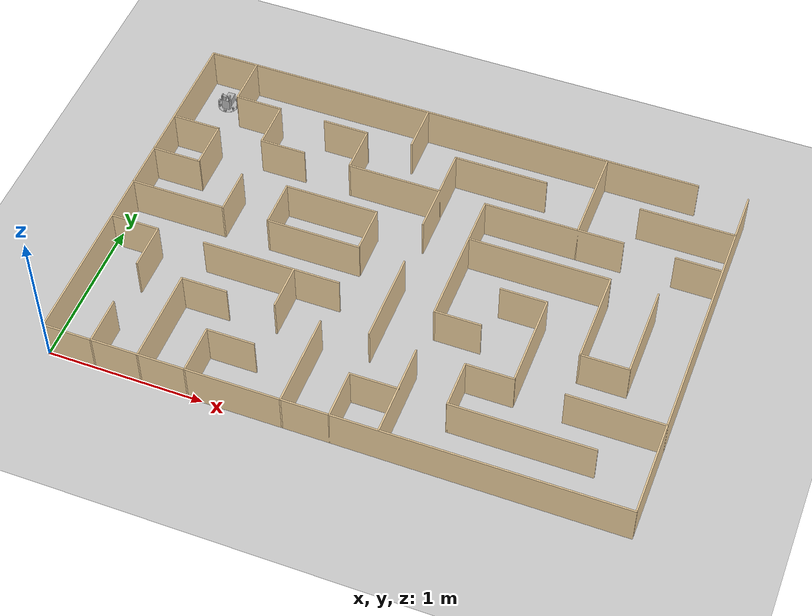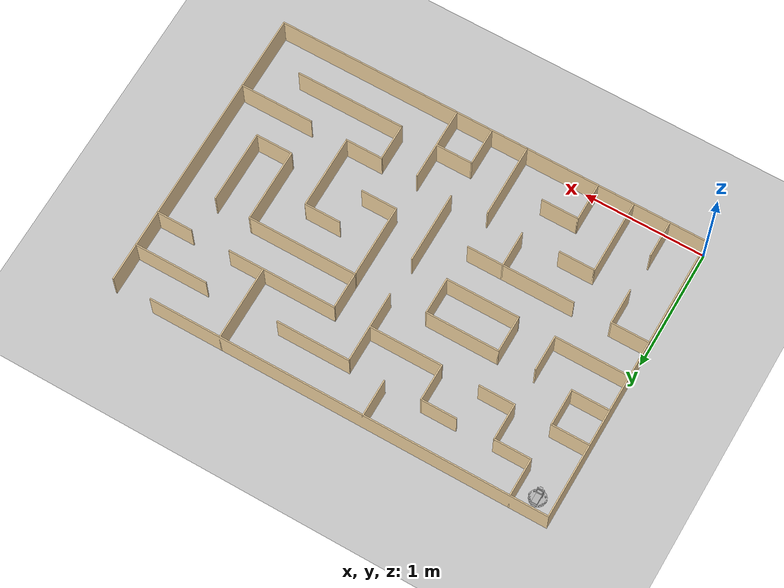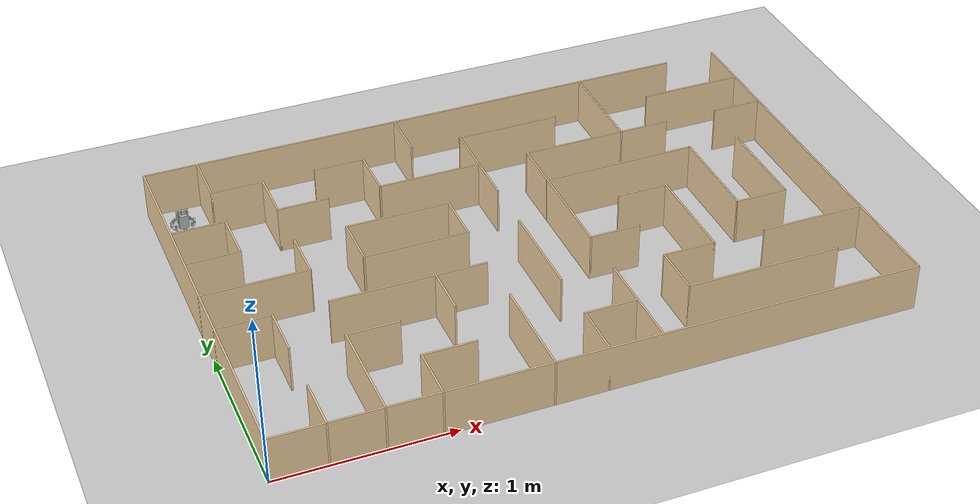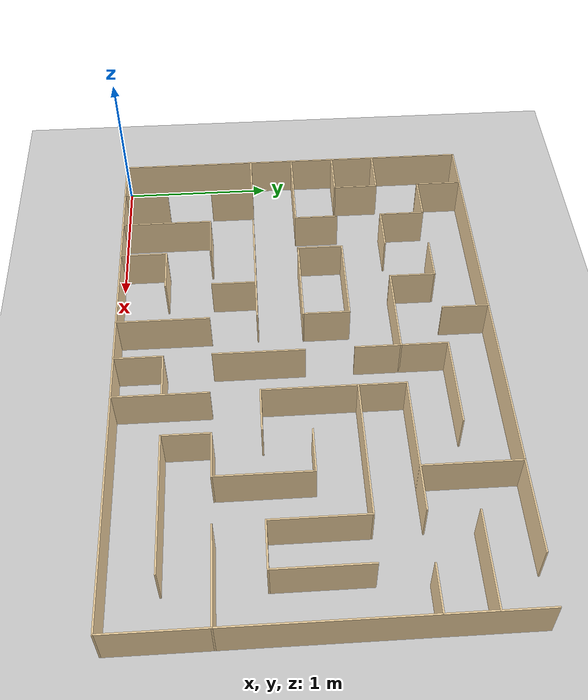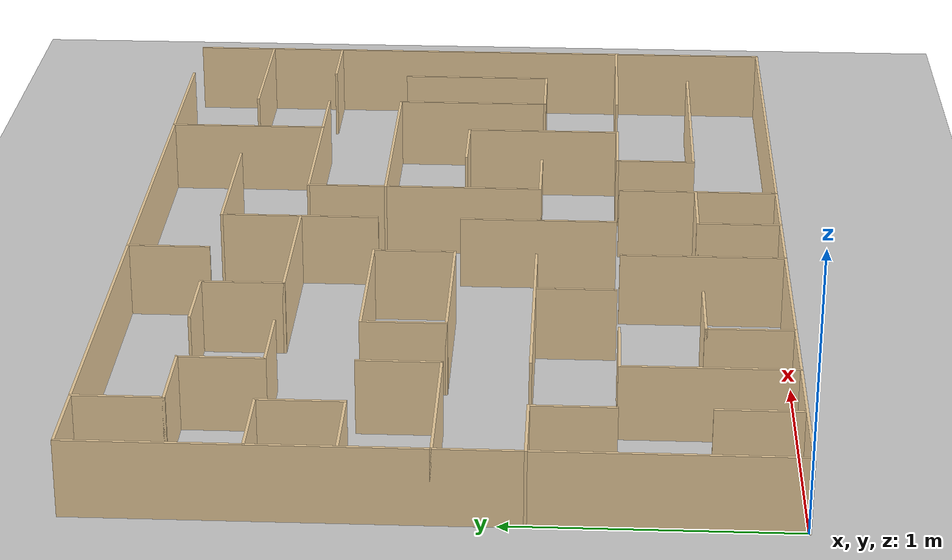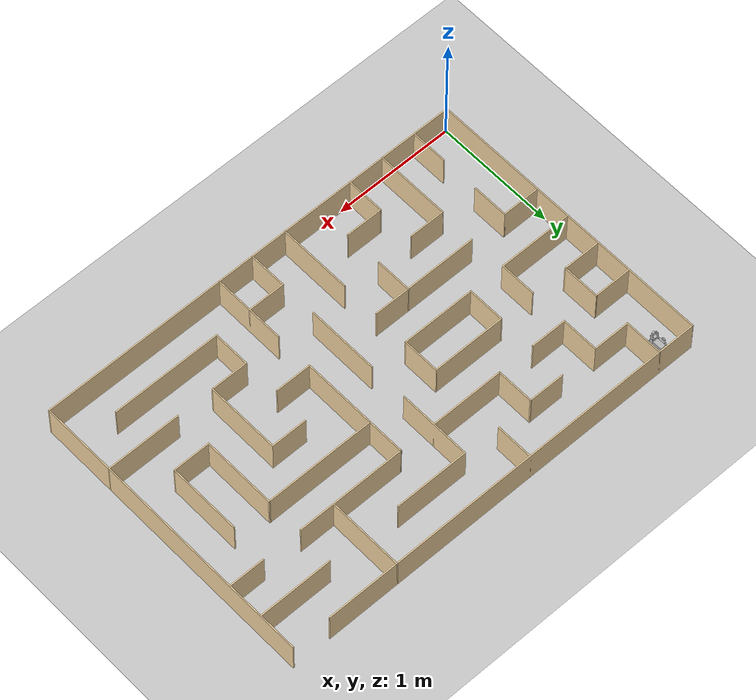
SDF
<?xml version="1.0" ?>
<sdf version="1.4">
  <world name="default">
    <scene>
      <ambient>0.5 0.5 0.5 1.0</ambient>
      <shadows>0</shadows>
    </scene>
    <include>
      <uri>model://ground_plane</uri>
    </include>
    <include>
      <uri>model://sun</uri>
    </include>
    <include>
      <uri>model://iti0201_robot</uri>
      <name>iti0201_robot</name>
      <pose>0.16 2.26 0 0 0 -1.57</pose> <!-- this is the robot's starting position, if you know where it should be, you can change this -->
    </include>

<model name='advanced_maze'>
    <pose frame=''>1.81 1.21 0 0 -0 0</pose>
    <link name='Wall_0'>
      <collision name='Wall_0_Collision'>
        <geometry>
          <box>
            <size>0.31 0.01 0.28</size>
          </box>
        </geometry>
        <pose frame=''>0 0 0.14 0 -0 0</pose>
      </collision>
      <visual name='Wall_0_Visual'>
        <pose frame=''>0 0 0.14 0 -0 0</pose>
        <geometry>
          <box>
            <size>0.31 0.01 0.28</size>
          </box>
        </geometry>
        <material>
          <script>
            <uri>file://media/materials/scripts/gazebo.material</uri>
            <name>Gazebo/Grey</name>
          </script>
          <ambient>0.921569 0.807843 0.615686 1</ambient>
        </material>
        <meta>
          <layer>0</layer>
        </meta>
      </visual>
      <pose frame=''>0.6 -0.75 0 0 0 -1.5708</pose>
    </link>
    <link name='Wall_101'>
      <collision name='Wall_101_Collision'>
        <geometry>
          <box>
            <size>0.32 0.01 0.28</size>
          </box>
        </geometry>
        <pose frame=''>0 0 0.14 0 -0 0</pose>
      </collision>
      <visual name='Wall_101_Visual'>
        <pose frame=''>0 0 0.14 0 -0 0</pose>
        <geometry>
          <box>
            <size>0.32 0.01 0.28</size>
          </box>
        </geometry>
        <material>
          <script>
            <uri>file://media/materials/scripts/gazebo.material</uri>
            <name>Gazebo/Grey</name>
          </script>
          <ambient>0.921569 0.807843 0.615686 1</ambient>
        </material>
        <meta>
          <layer>0</layer>
        </meta>
      </visual>
      <pose frame=''>-1.5 1.055 0 0 0 -1.5708</pose>
    </link>
    <link name='Wall_103'>
      <collision name='Wall_103_Collision'>
        <geometry>
          <box>
            <size>0.31 0.01 0.28</size>
          </box>
        </geometry>
        <pose frame=''>0 0 0.14 0 -0 0</pose>
      </collision>
      <visual name='Wall_103_Visual'>
        <pose frame=''>0 0 0.14 0 -0 0</pose>
        <geometry>
          <box>
            <size>0.31 0.01 0.28</size>
          </box>
        </geometry>
        <material>
          <script>
            <uri>file://media/materials/scripts/gazebo.material</uri>
            <name>Gazebo/Grey</name>
          </script>
          <ambient>0.921569 0.807843 0.615686 1</ambient>
        </material>
        <meta>
          <layer>0</layer>
        </meta>
      </visual>
      <pose frame=''>-1.35 0.9 0 0 -0 0</pose>
    </link>
    <link name='Wall_105'>
      <collision name='Wall_105_Collision'>
        <geometry>
          <box>
            <size>0.31 0.01 0.28</size>
          </box>
        </geometry>
        <pose frame=''>0 0 0.14 0 -0 0</pose>
      </collision>
      <visual name='Wall_105_Visual'>
        <pose frame=''>0 0 0.14 0 -0 0</pose>
        <geometry>
          <box>
            <size>0.31 0.01 0.28</size>
          </box>
        </geometry>
        <material>
          <script>
            <uri>file://media/materials/scripts/gazebo.material</uri>
            <name>Gazebo/Grey</name>
          </script>
          <ambient>0.921569 0.807843 0.615686 1</ambient>
        </material>
        <meta>
          <layer>0</layer>
        </meta>
      </visual>
      <pose frame=''>-1.2 0.75 0 0 0 -1.5708</pose>
    </link>
    <link name='Wall_108'>
      <collision name='Wall_108_Collision'>
        <geometry>
          <box>
            <size>0.3 0.01 0.28</size>
          </box>
        </geometry>
        <pose frame=''>0 0 0.14 0 -0 0</pose>
      </collision>
      <visual name='Wall_108_Visual'>
        <pose frame=''>0 0 0.14 0 -0 0</pose>
        <geometry>
          <box>
            <size>0.3 0.01 0.28</size>
          </box>
        </geometry>
        <material>
          <script>
            <uri>file://media/materials/scripts/gazebo.material</uri>
            <name>Gazebo/Grey</name>
          </script>
          <ambient>0.921569 0.807843 0.615686 1</ambient>
        </material>
        <meta>
          <layer>0</layer>
        </meta>
      </visual>
      <pose frame=''>-1.055 0.6 0 0 -0 0</pose>
    </link>
    <link name='Wall_11'>
      <collision name='Wall_11_Collision'>
        <geometry>
          <box>
            <size>0.61 0.01 0.28</size>
          </box>
        </geometry>
        <pose frame=''>0 0 0.14 0 -0 0</pose>
      </collision>
      <visual name='Wall_11_Visual'>
        <pose frame=''>0 0 0.14 0 -0 0</pose>
        <geometry>
          <box>
            <size>0.61 0.01 0.28</size>
          </box>
        </geometry>
        <material>
          <script>
            <uri>file://media/materials/scripts/gazebo.material</uri>
            <name>Gazebo/Grey</name>
          </script>
          <ambient>0.921569 0.807843 0.615686 1</ambient>
        </material>
        <meta>
          <layer>0</layer>
        </meta>
      </visual>
      <pose frame=''>0.9 -0.3 0 0 0 -1.5708</pose>
    </link>
    <link name='Wall_13'>
      <collision name='Wall_13_Collision'>
        <geometry>
          <box>
            <size>0.3 0.01 0.28</size>
          </box>
        </geometry>
        <pose frame=''>0 0 0.14 0 -0 0</pose>
      </collision>
      <visual name='Wall_13_Visual'>
        <pose frame=''>0 0 0.14 0 -0 0</pose>
        <geometry>
          <box>
            <size>0.3 0.01 0.28</size>
          </box>
        </geometry>
        <material>
          <script>
            <uri>file://media/materials/scripts/gazebo.material</uri>
            <name>Gazebo/Grey</name>
          </script>
          <ambient>0.921569 0.807843 0.615686 1</ambient>
        </material>
        <meta>
          <layer>0</layer>
        </meta>
      </visual>
      <pose frame=''>0.755 0 0 0 -0 0</pose>
    </link>
    <link name='Wall_15'>
      <collision name='Wall_15_Collision'>
        <geometry>
          <box>
            <size>0.61 0.01 0.28</size>
          </box>
        </geometry>
        <pose frame=''>0 0 0.14 0 -0 0</pose>
      </collision>
      <visual name='Wall_15_Visual'>
        <pose frame=''>0 0 0.14 0 -0 0</pose>
        <geometry>
          <box>
            <size>0.61 0.01 0.28</size>
          </box>
        </geometry>
        <material>
          <script>
            <uri>file://media/materials/scripts/gazebo.material</uri>
            <name>Gazebo/Grey</name>
          </script>
          <ambient>0.921569 0.807843 0.615686 1</ambient>
        </material>
        <meta>
          <layer>0</layer>
        </meta>
      </visual>
      <pose frame=''>1.2 0 0 0 -0 1.5708</pose>
    </link>
    <link name='Wall_17'>
      <collision name='Wall_17_Collision'>
        <geometry>
          <box>
            <size>0.91 0.01 0.28</size>
          </box>
        </geometry>
        <pose frame=''>0 0 0.14 0 -0 0</pose>
      </collision>
      <visual name='Wall_17_Visual'>
        <pose frame=''>0 0 0.14 0 -0 0</pose>
        <geometry>
          <box>
            <size>0.91 0.01 0.28</size>
          </box>
        </geometry>
        <material>
          <script>
            <uri>file://media/materials/scripts/gazebo.material</uri>
            <name>Gazebo/Grey</name>
          </script>
          <ambient>0.921569 0.807843 0.615686 1</ambient>
        </material>
        <meta>
          <layer>0</layer>
        </meta>
      </visual>
      <pose frame=''>0.75 0.3 0 0 -0 3.14159</pose>
    </link>
    <link name='Wall_19'>
      <collision name='Wall_19_Collision'>
        <geometry>
          <box>
            <size>0.91 0.01 0.28</size>
          </box>
        </geometry>
        <pose frame=''>0 0 0.14 0 -0 0</pose>
      </collision>
      <visual name='Wall_19_Visual'>
        <pose frame=''>0 0 0.14 0 -0 0</pose>
        <geometry>
          <box>
            <size>0.91 0.01 0.28</size>
          </box>
        </geometry>
        <material>
          <script>
            <uri>file://media/materials/scripts/gazebo.material</uri>
            <name>Gazebo/Grey</name>
          </script>
          <ambient>0.921569 0.807843 0.615686 1</ambient>
        </material>
        <meta>
          <layer>0</layer>
        </meta>
      </visual>
      <pose frame=''>0.3 0.15 0 0 0 -1.5708</pose>
    </link>
    <link name='Wall_2'>
      <collision name='Wall_2_Collision'>
        <geometry>
          <box>
            <size>0.9 0.01 0.28</size>
          </box>
        </geometry>
        <pose frame=''>0 0 0.14 0 -0 0</pose>
      </collision>
      <visual name='Wall_2_Visual'>
        <pose frame=''>0 0 0.14 0 -0 0</pose>
        <geometry>
          <box>
            <size>0.9 0.01 0.28</size>
          </box>
        </geometry>
        <material>
          <script>
            <uri>file://media/materials/scripts/gazebo.material</uri>
            <name>Gazebo/Grey</name>
          </script>
          <ambient>0.921569 0.807843 0.615686 1</ambient>
        </material>
        <meta>
          <layer>0</layer>
        </meta>
      </visual>
      <pose frame=''>1.045 -0.9 0 0 -0 0</pose>
    </link>
    <link name='Wall_21'>
      <collision name='Wall_21_Collision'>
        <geometry>
          <box>
            <size>0.3 0.01 0.28</size>
          </box>
        </geometry>
        <pose frame=''>0 0 0.14 0 -0 0</pose>
      </collision>
      <visual name='Wall_21_Visual'>
        <pose frame=''>0 0 0.14 0 -0 0</pose>
        <geometry>
          <box>
            <size>0.3 0.01 0.28</size>
          </box>
        </geometry>
        <material>
          <script>
            <uri>file://media/materials/scripts/gazebo.material</uri>
            <name>Gazebo/Grey</name>
          </script>
          <ambient>0.921569 0.807843 0.615686 1</ambient>
        </material>
        <meta>
          <layer>0</layer>
        </meta>
      </visual>
      <pose frame=''>0.445 -0.3 0 0 -0 0</pose>
    </link>
    <link name='Wall_23'>
      <collision name='Wall_23_Collision'>
        <geometry>
          <box>
            <size>0.9 0.01 0.28</size>
          </box>
        </geometry>
        <pose frame=''>0 0 0.14 0 -0 0</pose>
      </collision>
      <visual name='Wall_23_Visual'>
        <pose frame=''>0 0 0.14 0 -0 0</pose>
        <geometry>
          <box>
            <size>0.9 0.01 0.28</size>
          </box>
        </geometry>
        <material>
          <script>
            <uri>file://media/materials/scripts/gazebo.material</uri>
            <name>Gazebo/Grey</name>
          </script>
          <ambient>0.921569 0.807843 0.615686 1</ambient>
        </material>
        <meta>
          <layer>0</layer>
        </meta>
      </visual>
      <pose frame=''>0.745 0.6 0 0 -0 0</pose>
    </link>
    <link name='Wall_25'>
      <collision name='Wall_25_Collision'>
        <geometry>
          <box>
            <size>0.62 0.01 0.28</size>
          </box>
        </geometry>
        <pose frame=''>0 0 0.14 0 -0 0</pose>
      </collision>
      <visual name='Wall_25_Visual'>
        <pose frame=''>0 0 0.14 0 -0 0</pose>
        <geometry>
          <box>
            <size>0.62 0.01 0.28</size>
          </box>
        </geometry>
        <material>
          <script>
            <uri>file://media/materials/scripts/gazebo.material</uri>
            <name>Gazebo/Grey</name>
          </script>
          <ambient>0.921569 0.807843 0.615686 1</ambient>
        </material>
        <meta>
          <layer>0</layer>
        </meta>
      </visual>
      <pose frame=''>0.9 0.905 0 0 0 -1.5708</pose>
    </link>
    <link name='Wall_27'>
      <collision name='Wall_27_Collision'>
        <geometry>
          <box>
            <size>2.43 0.01 0.28</size>
          </box>
        </geometry>
        <pose frame=''>0 0 0.14 0 -0 0</pose>
      </collision>
      <visual name='Wall_27_Visual'>
        <pose frame=''>0 0 0.14 0 -0 0</pose>
        <geometry>
          <box>
            <size>2.43 0.01 0.28</size>
          </box>
        </geometry>
        <material>
          <script>
            <uri>file://media/materials/scripts/gazebo.material</uri>
            <name>Gazebo/Grey</name>
          </script>
          <ambient>0.921569 0.807843 0.615686 1</ambient>
        </material>
        <meta>
          <layer>0</layer>
        </meta>
      </visual>
      <pose frame=''>-1.81 0 0 0 -0 1.5708</pose>
    </link>
    <link name='Wall_29'>
      <collision name='Wall_29_Collision'>
        <geometry>
          <box>
            <size>0.61 0.01 0.28</size>
          </box>
        </geometry>
        <pose frame=''>0 0 0.14 0 -0 0</pose>
      </collision>
      <visual name='Wall_29_Visual'>
        <pose frame=''>0 0 0.14 0 -0 0</pose>
        <geometry>
          <box>
            <size>0.61 0.01 0.28</size>
          </box>
        </geometry>
        <material>
          <script>
            <uri>file://media/materials/scripts/gazebo.material</uri>
            <name>Gazebo/Grey</name>
          </script>
          <ambient>0.921569 0.807843 0.615686 1</ambient>
        </material>
        <meta>
          <layer>0</layer>
        </meta>
      </visual>
      <pose frame=''>1.51 0.9 0 0 -0 0</pose>
    </link>
    <link name='Wall_31'>
      <collision name='Wall_31_Collision'>
        <geometry>
          <box>
            <size>0.3 0.01 0.28</size>
          </box>
        </geometry>
        <pose frame=''>0 0 0.14 0 -0 0</pose>
      </collision>
      <visual name='Wall_31_Visual'>
        <pose frame=''>0 0 0.14 0 -0 0</pose>
        <geometry>
          <box>
            <size>0.3 0.01 0.28</size>
          </box>
        </geometry>
        <material>
          <script>
            <uri>file://media/materials/scripts/gazebo.material</uri>
            <name>Gazebo/Grey</name>
          </script>
          <ambient>0.921569 0.807843 0.615686 1</ambient>
        </material>
        <meta>
          <layer>0</layer>
        </meta>
      </visual>
      <pose frame=''>1.665 0.6 0 0 -0 0</pose>
    </link>
    <link name='Wall_34'>
      <collision name='Wall_34_Collision'>
        <geometry>
          <box>
            <size>0.61 0.01 0.28</size>
          </box>
        </geometry>
        <pose frame=''>0 0 0.14 0 -0 0</pose>
      </collision>
      <visual name='Wall_34_Visual'>
        <pose frame=''>0 0 0.14 0 -0 0</pose>
        <geometry>
          <box>
            <size>0.61 0.01 0.28</size>
          </box>
        </geometry>
        <material>
          <script>
            <uri>file://media/materials/scripts/gazebo.material</uri>
            <name>Gazebo/Grey</name>
          </script>
          <ambient>0.921569 0.807843 0.615686 1</ambient>
        </material>
        <meta>
          <layer>0</layer>
        </meta>
      </visual>
      <pose frame=''>1.51 -0.6 0 0 -0 0</pose>
    </link>
    <link name='Wall_36'>
      <collision name='Wall_36_Collision'>
        <geometry>
          <box>
            <size>0.61 0.01 0.28</size>
          </box>
        </geometry>
        <pose frame=''>0 0 0.14 0 -0 0</pose>
      </collision>
      <visual name='Wall_36_Visual'>
        <pose frame=''>0 0 0.14 0 -0 0</pose>
        <geometry>
          <box>
            <size>0.61 0.01 0.28</size>
          </box>
        </geometry>
        <material>
          <script>
            <uri>file://media/materials/scripts/gazebo.material</uri>
            <name>Gazebo/Grey</name>
          </script>
          <ambient>0.921569 0.807843 0.615686 1</ambient>
        </material>
        <meta>
          <layer>0</layer>
        </meta>
      </visual>
      <pose frame=''>0.3 -0.91 0 0 -0 1.5708</pose>
    </link>
    <link name='Wall_38'>
      <collision name='Wall_38_Collision'>
        <geometry>
          <box>
            <size>0.31 0.01 0.28</size>
          </box>
        </geometry>
        <pose frame=''>0 0 0.14 0 -0 0</pose>
      </collision>
      <visual name='Wall_38_Visual'>
        <pose frame=''>0 0 0.14 0 -0 0</pose>
        <geometry>
          <box>
            <size>0.31 0.01 0.28</size>
          </box>
        </geometry>
        <material>
          <script>
            <uri>file://media/materials/scripts/gazebo.material</uri>
            <name>Gazebo/Grey</name>
          </script>
          <ambient>0.921569 0.807843 0.615686 1</ambient>
        </material>
        <meta>
          <layer>0</layer>
        </meta>
      </visual>
      <pose frame=''>0.15 -0.9 0 0 -0 0</pose>
    </link>
    <link name='Wall_4'>
      <collision name='Wall_4_Collision'>
        <geometry>
          <box>
            <size>0.6 0.01 0.28</size>
          </box>
        </geometry>
        <pose frame=''>0 0 0.14 0 -0 0</pose>
      </collision>
      <visual name='Wall_4_Visual'>
        <pose frame=''>0 0 0.14 0 -0 0</pose>
        <geometry>
          <box>
            <size>0.6 0.01 0.28</size>
          </box>
        </geometry>
        <material>
          <script>
            <uri>file://media/materials/scripts/gazebo.material</uri>
            <name>Gazebo/Grey</name>
          </script>
          <ambient>0.921569 0.807843 0.615686 1</ambient>
        </material>
        <meta>
          <layer>0</layer>
        </meta>
      </visual>
      <pose frame=''>1.5 -0.005 0 0 0 -1.5708</pose>
    </link>
    <link name='Wall_40'>
      <collision name='Wall_40_Collision'>
        <geometry>
          <box>
            <size>0.32 0.01 0.28</size>
          </box>
        </geometry>
        <pose frame=''>0 0 0.14 0 -0 0</pose>
      </collision>
      <visual name='Wall_40_Visual'>
        <pose frame=''>0 0 0.14 0 -0 0</pose>
        <geometry>
          <box>
            <size>0.32 0.01 0.28</size>
          </box>
        </geometry>
        <material>
          <script>
            <uri>file://media/materials/scripts/gazebo.material</uri>
            <name>Gazebo/Grey</name>
          </script>
          <ambient>0.921569 0.807843 0.615686 1</ambient>
        </material>
        <meta>
          <layer>0</layer>
        </meta>
      </visual>
      <pose frame=''>0 -1.055 0 0 -0 1.5708</pose>
    </link>
    <link name='Wall_42'>
      <collision name='Wall_42_Collision'>
        <geometry>
          <box>
            <size>0.61 0.01 0.28</size>
          </box>
        </geometry>
        <pose frame=''>0 0 0.14 0 -0 0</pose>
      </collision>
      <visual name='Wall_42_Visual'>
        <pose frame=''>0 0 0.14 0 -0 0</pose>
        <geometry>
          <box>
            <size>0.61 0.01 0.28</size>
          </box>
        </geometry>
        <material>
          <script>
            <uri>file://media/materials/scripts/gazebo.material</uri>
            <name>Gazebo/Grey</name>
          </script>
          <ambient>0.921569 0.807843 0.615686 1</ambient>
        </material>
        <meta>
          <layer>0</layer>
        </meta>
      </visual>
      <pose frame=''>-0.3 -0.91 0 0 -0 1.5708</pose>
    </link>
    <link name='Wall_44'>
      <collision name='Wall_44_Collision'>
        <geometry>
          <box>
            <size>0.31 0.01 0.28</size>
          </box>
        </geometry>
        <pose frame=''>0 0 0.14 0 -0 0</pose>
      </collision>
      <visual name='Wall_44_Visual'>
        <pose frame=''>0 0 0.14 0 -0 0</pose>
        <geometry>
          <box>
            <size>0.31 0.01 0.28</size>
          </box>
        </geometry>
        <material>
          <script>
            <uri>file://media/materials/scripts/gazebo.material</uri>
            <name>Gazebo/Grey</name>
          </script>
          <ambient>0.921569 0.807843 0.615686 1</ambient>
        </material>
        <meta>
          <layer>0</layer>
        </meta>
      </visual>
      <pose frame=''>-0.75 -0.9 0 0 -0 0</pose>
    </link>
    <link name='Wall_46'>
      <collision name='Wall_46_Collision'>
        <geometry>
          <box>
            <size>0.32 0.01 0.28</size>
          </box>
        </geometry>
        <pose frame=''>0 0 0.14 0 -0 0</pose>
      </collision>
      <visual name='Wall_46_Visual'>
        <pose frame=''>0 0 0.14 0 -0 0</pose>
        <geometry>
          <box>
            <size>0.32 0.01 0.28</size>
          </box>
        </geometry>
        <material>
          <script>
            <uri>file://media/materials/scripts/gazebo.material</uri>
            <name>Gazebo/Grey</name>
          </script>
          <ambient>0.921569 0.807843 0.615686 1</ambient>
        </material>
        <meta>
          <layer>0</layer>
        </meta>
      </visual>
      <pose frame=''>-0.9 -1.055 0 0 -0 1.5708</pose>
    </link>
    <link name='Wall_48'>
      <collision name='Wall_48_Collision'>
        <geometry>
          <box>
            <size>0.3 0.01 0.28</size>
          </box>
        </geometry>
        <pose frame=''>0 0 0.14 0 -0 0</pose>
      </collision>
      <visual name='Wall_48_Visual'>
        <pose frame=''>0 0 0.14 0 -0 0</pose>
        <geometry>
          <box>
            <size>0.3 0.01 0.28</size>
          </box>
        </geometry>
        <material>
          <script>
            <uri>file://media/materials/scripts/gazebo.material</uri>
            <name>Gazebo/Grey</name>
          </script>
          <ambient>0.921569 0.807843 0.615686 1</ambient>
        </material>
        <meta>
          <layer>0</layer>
        </meta>
      </visual>
      <pose frame=''>-1.055 -0.6 0 0 -0 0</pose>
    </link>
    <link name='Wall_50'>
      <collision name='Wall_50_Collision'>
        <geometry>
          <box>
            <size>0.62 0.01 0.28</size>
          </box>
        </geometry>
        <pose frame=''>0 0 0.14 0 -0 0</pose>
      </collision>
      <visual name='Wall_50_Visual'>
        <pose frame=''>0 0 0.14 0 -0 0</pose>
        <geometry>
          <box>
            <size>0.62 0.01 0.28</size>
          </box>
        </geometry>
        <material>
          <script>
            <uri>file://media/materials/scripts/gazebo.material</uri>
            <name>Gazebo/Grey</name>
          </script>
          <ambient>0.921569 0.807843 0.615686 1</ambient>
        </material>
        <meta>
          <layer>0</layer>
        </meta>
      </visual>
      <pose frame=''>-1.2 -0.905 0 0 -0 1.5708</pose>
    </link>
    <link name='Wall_52'>
      <collision name='Wall_52_Collision'>
        <geometry>
          <box>
            <size>0.31 0.01 0.28</size>
          </box>
        </geometry>
        <pose frame=''>0 0 0.14 0 -0 0</pose>
      </collision>
      <visual name='Wall_52_Visual'>
        <pose frame=''>0 0 0.14 0 -0 0</pose>
        <geometry>
          <box>
            <size>0.31 0.01 0.28</size>
          </box>
        </geometry>
        <material>
          <script>
            <uri>file://media/materials/scripts/gazebo.material</uri>
            <name>Gazebo/Grey</name>
          </script>
          <ambient>0.921569 0.807843 0.615686 1</ambient>
        </material>
        <meta>
          <layer>0</layer>
        </meta>
      </visual>
      <pose frame=''>-1.5 -1.06 0 0 -0 1.5708</pose>
    </link>
    <link name='Wall_54'>
      <collision name='Wall_54_Collision'>
        <geometry>
          <box>
            <size>3.63 0.01 0.28</size>
          </box>
        </geometry>
        <pose frame=''>0 0 0.14 0 -0 0</pose>
      </collision>
      <visual name='Wall_54_Visual'>
        <pose frame=''>0 0 0.14 0 -0 0</pose>
        <geometry>
          <box>
            <size>3.63 0.01 0.28</size>
          </box>
        </geometry>
        <material>
          <script>
            <uri>file://media/materials/scripts/gazebo.material</uri>
            <name>Gazebo/Grey</name>
          </script>
          <ambient>0.921569 0.807843 0.615686 1</ambient>
        </material>
        <meta>
          <layer>0</layer>
        </meta>
      </visual>
      <pose frame=''>0 -1.21 0 0 -0 3.14159</pose>
    </link>
    <link name='Wall_56'>
      <collision name='Wall_56_Collision'>
        <geometry>
          <box>
            <size>2.43 0.01 0.28</size>
          </box>
        </geometry>
        <pose frame=''>0 0 0.14 0 -0 0</pose>
      </collision>
      <visual name='Wall_56_Visual'>
        <pose frame=''>0 0 0.14 0 -0 0</pose>
        <geometry>
          <box>
            <size>2.43 0.01 0.28</size>
          </box>
        </geometry>
        <material>
          <script>
            <uri>file://media/materials/scripts/gazebo.material</uri>
            <name>Gazebo/Grey</name>
          </script>
          <ambient>0.921569 0.807843 0.615686 1</ambient>
        </material>
        <meta>
          <layer>0</layer>
        </meta>
      </visual>
      <pose frame=''>1.81 0 0 0 0 -1.5708</pose>
    </link>
    <link name='Wall_58'>
      <collision name='Wall_58_Collision'>
        <geometry>
          <box>
            <size>0.6 0.01 0.28</size>
          </box>
        </geometry>
        <pose frame=''>0 0 0.14 0 -0 0</pose>
      </collision>
      <visual name='Wall_58_Visual'>
        <pose frame=''>0 0 0.14 0 -0 0</pose>
        <geometry>
          <box>
            <size>0.6 0.01 0.28</size>
          </box>
        </geometry>
        <material>
          <script>
            <uri>file://media/materials/scripts/gazebo.material</uri>
            <name>Gazebo/Grey</name>
          </script>
          <ambient>0.921569 0.807843 0.615686 1</ambient>
        </material>
        <meta>
          <layer>0</layer>
        </meta>
      </visual>
      <pose frame=''>0 0.605 0 0 0 -1.5708</pose>
    </link>
    <link name='Wall_60'>
      <collision name='Wall_60_Collision'>
        <geometry>
          <box>
            <size>0.61 0.01 0.28</size>
          </box>
        </geometry>
        <pose frame=''>0 0 0.14 0 -0 0</pose>
      </collision>
      <visual name='Wall_60_Visual'>
        <pose frame=''>0 0 0.14 0 -0 0</pose>
        <geometry>
          <box>
            <size>0.61 0.01 0.28</size>
          </box>
        </geometry>
        <material>
          <script>
            <uri>file://media/materials/scripts/gazebo.material</uri>
            <name>Gazebo/Grey</name>
          </script>
          <ambient>0.921569 0.807843 0.615686 1</ambient>
        </material>
        <meta>
          <layer>0</layer>
        </meta>
      </visual>
      <pose frame=''>-0.3 0.6 0 0 -0 3.14159</pose>
    </link>
    <link name='Wall_62'>
      <collision name='Wall_62_Collision'>
        <geometry>
          <box>
            <size>0.31 0.01 0.28</size>
          </box>
        </geometry>
        <pose frame=''>0 0 0.14 0 -0 0</pose>
      </collision>
      <visual name='Wall_62_Visual'>
        <pose frame=''>0 0 0.14 0 -0 0</pose>
        <geometry>
          <box>
            <size>0.31 0.01 0.28</size>
          </box>
        </geometry>
        <material>
          <script>
            <uri>file://media/materials/scripts/gazebo.material</uri>
            <name>Gazebo/Grey</name>
          </script>
          <ambient>0.921569 0.807843 0.615686 1</ambient>
        </material>
        <meta>
          <layer>0</layer>
        </meta>
      </visual>
      <pose frame=''>-0.6 0.75 0 0 -0 1.5708</pose>
    </link>
    <link name='Wall_64'>
      <collision name='Wall_64_Collision'>
        <geometry>
          <box>
            <size>0.3 0.01 0.28</size>
          </box>
        </geometry>
        <pose frame=''>0 0 0.14 0 -0 0</pose>
      </collision>
      <visual name='Wall_64_Visual'>
        <pose frame=''>0 0 0.14 0 -0 0</pose>
        <geometry>
          <box>
            <size>0.3 0.01 0.28</size>
          </box>
        </geometry>
        <material>
          <script>
            <uri>file://media/materials/scripts/gazebo.material</uri>
            <name>Gazebo/Grey</name>
          </script>
          <ambient>0.921569 0.807843 0.615686 1</ambient>
        </material>
        <meta>
          <layer>0</layer>
        </meta>
      </visual>
      <pose frame=''>-0.745 0.9 0 0 -0 3.14159</pose>
    </link>
    <link name='Wall_66'>
      <collision name='Wall_66_Collision'>
        <geometry>
          <box>
            <size>0.61 0.01 0.28</size>
          </box>
        </geometry>
        <pose frame=''>0 0 0.14 0 -0 0</pose>
      </collision>
      <visual name='Wall_66_Visual'>
        <pose frame=''>0 0 0.14 0 -0 0</pose>
        <geometry>
          <box>
            <size>0.61 0.01 0.28</size>
          </box>
        </geometry>
        <material>
          <script>
            <uri>file://media/materials/scripts/gazebo.material</uri>
            <name>Gazebo/Grey</name>
          </script>
          <ambient>0.921569 0.807843 0.615686 1</ambient>
        </material>
        <meta>
          <layer>0</layer>
        </meta>
      </visual>
      <pose frame=''>-0.6 0.3 0 0 -0 0</pose>
    </link>
    <link name='Wall_68'>
      <collision name='Wall_68_Collision'>
        <geometry>
          <box>
            <size>0.3 0.01 0.28</size>
          </box>
        </geometry>
        <pose frame=''>0 0 0.14 0 -0 0</pose>
      </collision>
      <visual name='Wall_68_Visual'>
        <pose frame=''>0 0 0.14 0 -0 0</pose>
        <geometry>
          <box>
            <size>0.3 0.01 0.28</size>
          </box>
        </geometry>
        <material>
          <script>
            <uri>file://media/materials/scripts/gazebo.material</uri>
            <name>Gazebo/Grey</name>
          </script>
          <ambient>0.921569 0.807843 0.615686 1</ambient>
        </material>
        <meta>
          <layer>0</layer>
        </meta>
      </visual>
      <pose frame=''>-0.6 -0.445 0 0 0 -1.5708</pose>
    </link>
    <link name='Wall_7'>
      <collision name='Wall_7_Collision'>
        <geometry>
          <box>
            <size>0.31 0.01 0.28</size>
          </box>
        </geometry>
        <pose frame=''>0 0 0.14 0 -0 0</pose>
      </collision>
      <visual name='Wall_7_Visual'>
        <pose frame=''>0 0 0.14 0 -0 0</pose>
        <geometry>
          <box>
            <size>0.31 0.01 0.28</size>
          </box>
        </geometry>
        <material>
          <script>
            <uri>file://media/materials/scripts/gazebo.material</uri>
            <name>Gazebo/Grey</name>
          </script>
          <ambient>0.921569 0.807843 0.615686 1</ambient>
        </material>
        <meta>
          <layer>0</layer>
        </meta>
      </visual>
      <pose frame=''>1.35 -0.3 0 0 -0 3.14159</pose>
    </link>
    <link name='Wall_70'>
      <collision name='Wall_70_Collision'>
        <geometry>
          <box>
            <size>0.89 0.01 0.28</size>
          </box>
        </geometry>
        <pose frame=''>0 0 0.14 0 -0 0</pose>
      </collision>
      <visual name='Wall_70_Visual'>
        <pose frame=''>0 0 0.14 0 -0 0</pose>
        <geometry>
          <box>
            <size>0.89 0.01 0.28</size>
          </box>
        </geometry>
        <material>
          <script>
            <uri>file://media/materials/scripts/gazebo.material</uri>
            <name>Gazebo/Grey</name>
          </script>
          <ambient>0.921569 0.807843 0.615686 1</ambient>
        </material>
        <meta>
          <layer>0</layer>
        </meta>
      </visual>
      <pose frame=''>-0.75 -0.3 0 0 -0 0</pose>
    </link>
    <link name='Wall_72'>
      <collision name='Wall_72_Collision'>
        <geometry>
          <box>
            <size>0.31 0.01 0.28</size>
          </box>
        </geometry>
        <pose frame=''>0 0 0.14 0 -0 0</pose>
      </collision>
      <visual name='Wall_72_Visual'>
        <pose frame=''>0 0 0.14 0 -0 0</pose>
        <geometry>
          <box>
            <size>0.31 0.01 0.28</size>
          </box>
        </geometry>
        <material>
          <script>
            <uri>file://media/materials/scripts/gazebo.material</uri>
            <name>Gazebo/Grey</name>
          </script>
          <ambient>0.921569 0.807843 0.615686 1</ambient>
        </material>
        <meta>
          <layer>0</layer>
        </meta>
      </visual>
      <pose frame=''>-0.9 0.15 0 0 -0 1.5708</pose>
    </link>
    <link name='Wall_74'>
      <collision name='Wall_74_Collision'>
        <geometry>
          <box>
            <size>0.61 0.01 0.28</size>
          </box>
        </geometry>
        <pose frame=''>0 0 0.14 0 -0 0</pose>
      </collision>
      <visual name='Wall_74_Visual'>
        <pose frame=''>0 0 0.14 0 -0 0</pose>
        <geometry>
          <box>
            <size>0.61 0.01 0.28</size>
          </box>
        </geometry>
        <material>
          <script>
            <uri>file://media/materials/scripts/gazebo.material</uri>
            <name>Gazebo/Grey</name>
          </script>
          <ambient>0.921569 0.807843 0.615686 1</ambient>
        </material>
        <meta>
          <layer>0</layer>
        </meta>
      </visual>
      <pose frame=''>-0.6 0 0 0 -0 3.14159</pose>
    </link>
    <link name='Wall_76'>
      <collision name='Wall_76_Collision'>
        <geometry>
          <box>
            <size>0.31 0.01 0.28</size>
          </box>
        </geometry>
        <pose frame=''>0 0 0.14 0 -0 0</pose>
      </collision>
      <visual name='Wall_76_Visual'>
        <pose frame=''>0 0 0.14 0 -0 0</pose>
        <geometry>
          <box>
            <size>0.31 0.01 0.28</size>
          </box>
        </geometry>
        <material>
          <script>
            <uri>file://media/materials/scripts/gazebo.material</uri>
            <name>Gazebo/Grey</name>
          </script>
          <ambient>0.921569 0.807843 0.615686 1</ambient>
        </material>
        <meta>
          <layer>0</layer>
        </meta>
      </visual>
      <pose frame=''>-0.3 0.15 0 0 0 -1.5708</pose>
    </link>
    <link name='Wall_78'>
      <collision name='Wall_78_Collision'>
        <geometry>
          <box>
            <size>0.61 0.01 0.28</size>
          </box>
        </geometry>
        <pose frame=''>0 0 0.14 0 -0 0</pose>
      </collision>
      <visual name='Wall_78_Visual'>
        <pose frame=''>0 0 0.14 0 -0 0</pose>
        <geometry>
          <box>
            <size>0.61 0.01 0.28</size>
          </box>
        </geometry>
        <material>
          <script>
            <uri>file://media/materials/scripts/gazebo.material</uri>
            <name>Gazebo/Grey</name>
          </script>
          <ambient>0.921569 0.807843 0.615686 1</ambient>
        </material>
        <meta>
          <layer>0</layer>
        </meta>
      </visual>
      <pose frame=''>0.3 0.9 0 0 -0 3.14159</pose>
    </link>
    <link name='Wall_80'>
      <collision name='Wall_80_Collision'>
        <geometry>
          <box>
            <size>0.31 0.01 0.28</size>
          </box>
        </geometry>
        <pose frame=''>0 0 0.14 0 -0 0</pose>
      </collision>
      <visual name='Wall_80_Visual'>
        <pose frame=''>0 0 0.14 0 -0 0</pose>
        <geometry>
          <box>
            <size>0.31 0.01 0.28</size>
          </box>
        </geometry>
        <material>
          <script>
            <uri>file://media/materials/scripts/gazebo.material</uri>
            <name>Gazebo/Grey</name>
          </script>
          <ambient>0.921569 0.807843 0.615686 1</ambient>
        </material>
        <meta>
          <layer>0</layer>
        </meta>
      </visual>
      <pose frame=''>-0.3 1.06 0 0 0 -1.5708</pose>
    </link>
    <link name='Wall_82'>
      <collision name='Wall_82_Collision'>
        <geometry>
          <box>
            <size>0.59 0.01 0.28</size>
          </box>
        </geometry>
        <pose frame=''>0 0 0.14 0 -0 0</pose>
      </collision>
      <visual name='Wall_82_Visual'>
        <pose frame=''>0 0 0.14 0 -0 0</pose>
        <geometry>
          <box>
            <size>0.59 0.01 0.28</size>
          </box>
        </geometry>
        <material>
          <script>
            <uri>file://media/materials/scripts/gazebo.material</uri>
            <name>Gazebo/Grey</name>
          </script>
          <ambient>0.921569 0.807843 0.615686 1</ambient>
        </material>
        <meta>
          <layer>0</layer>
        </meta>
      </visual>
      <pose frame=''>0 -0.3 0 0 0 -1.5708</pose>
    </link>
    <link name='Wall_84'>
      <collision name='Wall_84_Collision'>
        <geometry>
          <box>
            <size>3.31 0.01 0.28</size>
          </box>
        </geometry>
        <pose frame=''>0 0 0.14 0 -0 0</pose>
      </collision>
      <visual name='Wall_84_Visual'>
        <pose frame=''>0 0 0.14 0 -0 0</pose>
        <geometry>
          <box>
            <size>3.31 0.01 0.28</size>
          </box>
        </geometry>
        <material>
          <script>
            <uri>file://media/materials/scripts/gazebo.material</uri>
            <name>Gazebo/Grey</name>
          </script>
          <ambient>0.921569 0.807843 0.615686 1</ambient>
        </material>
        <meta>
          <layer>0</layer>
        </meta>
      </visual>
      <pose frame=''>-0.16 1.21 0 0 -0 0</pose>
    </link>
    <link name='Wall_86'>
      <collision name='Wall_86_Collision'>
        <geometry>
          <box>
            <size>0.32 0.01 0.28</size>
          </box>
        </geometry>
        <pose frame=''>0 0 0.14 0 -0 0</pose>
      </collision>
      <visual name='Wall_86_Visual'>
        <pose frame=''>0 0 0.14 0 -0 0</pose>
        <geometry>
          <box>
            <size>0.32 0.01 0.28</size>
          </box>
        </geometry>
        <material>
          <script>
            <uri>file://media/materials/scripts/gazebo.material</uri>
            <name>Gazebo/Grey</name>
          </script>
          <ambient>0.921569 0.807843 0.615686 1</ambient>
        </material>
        <meta>
          <layer>0</layer>
        </meta>
      </visual>
      <pose frame=''>-1.655 0.6 0 0 -0 0</pose>
    </link>
    <link name='Wall_88'>
      <collision name='Wall_88_Collision'>
        <geometry>
          <box>
            <size>0.31 0.01 0.28</size>
          </box>
        </geometry>
        <pose frame=''>0 0 0.14 0 -0 0</pose>
      </collision>
      <visual name='Wall_88_Visual'>
        <pose frame=''>0 0 0.14 0 -0 0</pose>
        <geometry>
          <box>
            <size>0.31 0.01 0.28</size>
          </box>
        </geometry>
        <material>
          <script>
            <uri>file://media/materials/scripts/gazebo.material</uri>
            <name>Gazebo/Grey</name>
          </script>
          <ambient>0.921569 0.807843 0.615686 1</ambient>
        </material>
        <meta>
          <layer>0</layer>
        </meta>
      </visual>
      <pose frame=''>-1.5 0.45 0 0 0 -1.5708</pose>
    </link>
    <link name='Wall_9'>
      <collision name='Wall_9_Collision'>
        <geometry>
          <box>
            <size>0.31 0.01 0.28</size>
          </box>
        </geometry>
        <pose frame=''>0 0 0.14 0 -0 0</pose>
      </collision>
      <visual name='Wall_9_Visual'>
        <pose frame=''>0 0 0.14 0 -0 0</pose>
        <geometry>
          <box>
            <size>0.31 0.01 0.28</size>
          </box>
        </geometry>
        <material>
          <script>
            <uri>file://media/materials/scripts/gazebo.material</uri>
            <name>Gazebo/Grey</name>
          </script>
          <ambient>0.921569 0.807843 0.615686 1</ambient>
        </material>
        <meta>
          <layer>0</layer>
        </meta>
      </visual>
      <pose frame=''>0.75 -0.6 0 0 -0 3.14159</pose>
    </link>
    <link name='Wall_90'>
      <collision name='Wall_90_Collision'>
        <geometry>
          <box>
            <size>0.3 0.01 0.28</size>
          </box>
        </geometry>
        <pose frame=''>0 0 0.14 0 -0 0</pose>
      </collision>
      <visual name='Wall_90_Visual'>
        <pose frame=''>0 0 0.14 0 -0 0</pose>
        <geometry>
          <box>
            <size>0.3 0.01 0.28</size>
          </box>
        </geometry>
        <material>
          <script>
            <uri>file://media/materials/scripts/gazebo.material</uri>
            <name>Gazebo/Grey</name>
          </script>
          <ambient>0.921569 0.807843 0.615686 1</ambient>
        </material>
        <meta>
          <layer>0</layer>
        </meta>
      </visual>
      <pose frame=''>-1.2 0.145 0 0 -0 1.5708</pose>
    </link>
    <link name='Wall_92'>
      <collision name='Wall_92_Collision'>
        <geometry>
          <box>
            <size>0.62 0.01 0.28</size>
          </box>
        </geometry>
        <pose frame=''>0 0 0.14 0 -0 0</pose>
      </collision>
      <visual name='Wall_92_Visual'>
        <pose frame=''>0 0 0.14 0 -0 0</pose>
        <geometry>
          <box>
            <size>0.62 0.01 0.28</size>
          </box>
        </geometry>
        <material>
          <script>
            <uri>file://media/materials/scripts/gazebo.material</uri>
            <name>Gazebo/Grey</name>
          </script>
          <ambient>0.921569 0.807843 0.615686 1</ambient>
        </material>
        <meta>
          <layer>0</layer>
        </meta>
      </visual>
      <pose frame=''>-1.505 0 0 0 -0 0</pose>
    </link>
    <link name='Wall_94'>
      <collision name='Wall_94_Collision'>
        <geometry>
          <box>
            <size>0.3 0.01 0.28</size>
          </box>
        </geometry>
        <pose frame=''>0 0 0.14 0 -0 0</pose>
      </collision>
      <visual name='Wall_94_Visual'>
        <pose frame=''>0 0 0.14 0 -0 0</pose>
        <geometry>
          <box>
            <size>0.3 0.01 0.28</size>
          </box>
        </geometry>
        <material>
          <script>
            <uri>file://media/materials/scripts/gazebo.material</uri>
            <name>Gazebo/Grey</name>
          </script>
          <ambient>0.921569 0.807843 0.615686 1</ambient>
        </material>
        <meta>
          <layer>0</layer>
        </meta>
      </visual>
      <pose frame=''>-1.5 -0.445 0 0 0 -1.5708</pose>
    </link>
    <link name='Wall_96'>
      <collision name='Wall_96_Collision'>
        <geometry>
          <box>
            <size>0.32 0.01 0.28</size>
          </box>
        </geometry>
        <pose frame=''>0 0 0.14 0 -0 0</pose>
      </collision>
      <visual name='Wall_96_Visual'>
        <pose frame=''>0 0 0.14 0 -0 0</pose>
        <geometry>
          <box>
            <size>0.32 0.01 0.28</size>
          </box>
        </geometry>
        <material>
          <script>
            <uri>file://media/materials/scripts/gazebo.material</uri>
            <name>Gazebo/Grey</name>
          </script>
          <ambient>0.921569 0.807843 0.615686 1</ambient>
        </material>
        <meta>
          <layer>0</layer>
        </meta>
      </visual>
      <pose frame=''>-1.655 -0.3 0 0 -0 0</pose>
    </link>
    <link name='Wall_99'>
      <collision name='Wall_99_Collision'>
        <geometry>
          <box>
            <size>0.32 0.01 0.28</size>
          </box>
        </geometry>
        <pose frame=''>0 0 0.14 0 -0 0</pose>
      </collision>
      <visual name='Wall_99_Visual'>
        <pose frame=''>0 0 0.14 0 -0 0</pose>
        <geometry>
          <box>
            <size>0.32 0.01 0.28</size>
          </box>
        </geometry>
        <material>
          <script>
            <uri>file://media/materials/scripts/gazebo.material</uri>
            <name>Gazebo/Grey</name>
          </script>
          <ambient>0.921569 0.807843 0.615686 1</ambient>
        </material>
        <meta>
          <layer>0</layer>
        </meta>
      </visual>
      <pose frame=''>-1.655 0.3 0 0 -0 3.14159</pose>
    </link>
    <static>1</static>
  </model>

  </world>
</sdf>

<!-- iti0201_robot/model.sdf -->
<sdf version='1.4'>
  	<model name="iti0201_robot">
  		<static>false</static>

      <!-- LINK 1: Chassis, connect wheels and base to this. -->
      <link name="chassis">
        <pose>0 0 0.0152 0 0 0</pose>
      </link>

      <joint type="fixed" name="chassis_to_base">
        <pose>0 0 0 0 0 0</pose>
        <child>base</child>
        <parent>chassis</parent>
        <axis>
          <xyz>0 0 0</xyz>
        </axis>
      </joint>

      <!-- LINK 2: Base, contains caster wheels, base, brainbox and base for camera stand. -->
  		<link name='base'>
        <pose>0 0 .006 0 0 0</pose>

          <inertial>
            <mass>50</mass>
          </inertial>

          <collision name='base_collision'>
            <geometry>
              <cylinder>
                <radius>.069912</radius>
                <length>0.001591</length>
              </cylinder>
            </geometry>
          </collision>

          <visual name='base_visual'>
            <geometry>
              <cylinder>
                <radius>.069912</radius>
                <length>0.001591</length>
              </cylinder>
            </geometry>
          </visual>

          <collision name="brainbox_collision">
            <pose>-0.022 0 0.02641535 0 0 0</pose>
            <geometry>
              <box>
                <size>.077304 .0468221 .0512397</size>
              </box>
            </geometry>
          </collision>

          <visual name="brainbox_visual">
            <pose>-0.022 0 0.02641535 0 0 0</pose>
            <geometry>
              <box>
                <size>.077304 .0468221 .0512397</size>
              </box>
            </geometry>
          </visual>

          <collision name="camera_stand_collision">
            <pose>0.02940475 0 0.0402758 0 0 0</pose>
            <geometry>
              <box>
                <size>.0255021 .0553499 .0789606</size>
              </box>
            </geometry>
          </collision>

          <visual name="camera_stand_visual">
            <pose>0.02940475 0 0.0402758 0 0 0</pose>
            <geometry>
              <box>
                <size>.0255021 .0553499 .0789606</size>
              </box>
            </geometry>
          </visual>

          <collision name="camera_stand_right_wall_collision">
          <pose>0.02940475 -0.02467495 0.0970561 0 0 0</pose>
            <geometry>
              <box>
                <size>.0255021 .006 .0346</size>
              </box>
            </geometry>
          </collision>

          <visual name="camera_stand_right_wall_visual">
          <pose>0.02940475 -0.02467495 0.0970561 0 0 0</pose>
            <geometry>
              <box>
                <size>.0255021 .006 .0346</size>
              </box>
            </geometry>
          </visual>

          <collision name="camera_stand_left_wall_collision">
          <pose>0.02940475 0.02467495 0.0970561 0 0 0</pose>
            <geometry>
              <box>
                <size>.0255021 .006 .0346</size>
              </box>
            </geometry>
          </collision>

          <visual name="camera_stand_left_wall_visual">
          <pose>0.02940475 0.02467495 0.0970561 0 0 0</pose>
            <geometry>
              <box>
                <size>.0255021 .006 .0346</size>
              </box>
            </geometry>
          </visual>

          <collision name='front_caster_collision'>
            <pose>0.035 0 -0.001 0 0 0</pose>
            <geometry>
                <sphere>
                <radius>.004648</radius>
              </sphere>
            </geometry>

            <surface>
              <friction>
                <ode>
                  <mu>0</mu>
                  <mu2>0</mu2>
                  <slip1>1.0</slip1>
                  <slip2>1.0</slip2>
                </ode>
              </friction>
            </surface>
          </collision>

          <visual name='front_caster_visual'>
            <pose>0.035 0 -0.001 0 0 0</pose>
            <geometry>
              <sphere>
                <radius>.004648</radius>
              </sphere>
            </geometry>
          </visual>

          <collision name='rear_caster_collision'>
            <pose>-0.035 0 -0.001 0 0 0</pose>
            <geometry>
                <sphere>
                <radius>.004648</radius>
              </sphere>
            </geometry>

            <surface>
              <friction>
                <ode>
                  <mu>0</mu>
                  <mu2>0</mu2>
                  <slip1>1.0</slip1>
                  <slip2>1.0</slip2>
                </ode>
              </friction>
            </surface>
          </collision>

          <visual name='rear_caster_visual'>
            <pose>-0.035 0 -0.001 0 0 0</pose>
            <geometry>
              <sphere>
                <radius>.004648</radius>
              </sphere>
            </geometry>
          </visual>
      </link>

      <!-- LINKS 3-11: Infrared sensors. -->
      <link name="front_right_45deg_ir">
        <pose>0.0326151 -0.0470558 0.0167955 0 0 0.78535</pose>
        <collision name="collision">
          <geometry>
            <box>
              <size>.01 .01 .02</size>
            </box>
          </geometry>
        </collision>
        <visual name="visual">
          <geometry>
            <box>
              <size>.01 .01 .02</size>
            </box>
          </geometry>
        </visual>
      </link>

      <joint type="fixed" name="front_right_45deg_ir_to_base">
        <pose>0 0 0 0 0 0</pose>
        <child>front_right_45deg_ir</child>
        <parent>base</parent>
      </joint>

      <link name="front_middle_ir">
        <pose>0.059312 0 0.0117955 0 0 0</pose>
        <collision name="collision">
          <geometry>
            <box>
              <size>.01 .02 .01</size>
            </box>
          </geometry>
        </collision>
        <visual name="visual">
          <geometry>
            <box>
              <size>.01 .02 .01</size>
            </box>
          </geometry>
        </visual>
      </link>

      <joint type="fixed" name="front_middle_ir_to_base">
        <pose>0 0 0 0 0 0</pose>
        <child>front_middle_ir</child>
        <parent>base</parent>
      </joint>

      <link name="front_left_45deg_ir">
        <pose>0.0326151 0.0470558 0.0167955 0 0 0.78535</pose>
        <collision name="collision">
          <geometry>
            <box>
              <size>.01 .01 .02</size>
            </box>
          </geometry>
        </collision>
        <visual name="visual">
          <geometry>
            <box>
              <size>.01 .01 .02</size>
            </box>
          </geometry>
        </visual>
      </link>

      <joint type="fixed" name="front_left_45deg_ir_to_base">
        <pose>0 0 0 0 0 0</pose>
        <child>front_left_45deg_ir</child>
        <parent>base</parent>
      </joint>

      <link name="rear_right_90deg_ir">
        <pose>-0.0225688 -0.054749 0.014341 0 0 0</pose>
        <collision name="collision">
          <geometry>
            <box>
              <size>.008 .012 .0135</size>
            </box>
          </geometry>
        </collision>
        <visual name="visual">
          <geometry>
            <box>
              <size>.008 .012 .0135</size>
            </box>
          </geometry>
        </visual>
      </link>

      <joint type="fixed" name="rear_right_90deg_ir_to_base">
        <pose>0 0 0 0 0 0</pose>
        <child>rear_right_90deg_ir</child>
        <parent>base</parent>
      </joint>

      <link name="rear_right_45deg_ir">
        <pose>-0.037845 -0.046812 0.014341 0 0 -0.78535</pose>
        <collision name="collision">
          <geometry>
            <box>
              <size>.008 .012 .0135</size>
            </box>
          </geometry>
        </collision>
        <visual name="visual">
          <geometry>
            <box>
              <size>.008 .012 .0135</size>
            </box>
          </geometry>
        </visual>
      </link>

      <joint type="fixed" name="rear_right_45deg_ir_to_base">
        <pose>0 0 0 0 0 0</pose>
        <child>rear_right_45deg_ir</child>
        <parent>base</parent>
      </joint>

      <link name="rear_right_straight_ir">
        <pose>-0.0501109 -0.035473 0.014341 0 0 1.5707</pose>
        <collision name="collision">
          <geometry>
            <box>
              <size>.008 .012 .0135</size>
            </box>
          </geometry>
        </collision>
        <visual name="visual">
          <geometry>
            <box>
              <size>.008 .012 .0135</size>
            </box>
          </geometry>
        </visual>
      </link>

      <joint type="fixed" name="rear_right_straight_ir_to_base">
        <pose>0 0 0 0 0 0</pose>
        <child>rear_right_straight_ir</child>
        <parent>base</parent>
      </joint>

      <link name="rear_left_90deg_ir">
        <pose>-0.0225688 0.054749 0.014341 0 0 0</pose>
        <collision name="collision">
          <geometry>
            <box>
              <size>.008 .012 .0135</size>
            </box>
          </geometry>
        </collision>
        <visual name="visual">
          <geometry>
            <box>
              <size>.008 .012 .0135</size>
            </box>
          </geometry>
        </visual>
      </link>

      <joint type="fixed" name="rear_left_90deg_ir_to_base">
        <pose>0 0 0 0 0 0</pose>
        <child>rear_left_90deg_ir</child>
        <parent>base</parent>
      </joint>

      <link name="rear_left_45deg_ir">
        <pose>-0.037845 0.046812 0.014341 0 0 0.78535</pose>
        <collision name="collision">
          <geometry>
            <box>
              <size>.008 .012 .0135</size>
            </box>
          </geometry>
        </collision>
        <visual name="visual">
          <geometry>
            <box>
              <size>.008 .012 .0135</size>
            </box>
          </geometry>
        </visual>
      </link>

      <joint type="fixed" name="rear_left_45deg_ir_to_base">
        <pose>0 0 0 0 0 0</pose>
        <child>rear_left_45deg_ir</child>
        <parent>base</parent>
      </joint>

      <link name="rear_left_straight_ir">
        <pose>-0.0501109 0.035473 0.014341 0 0 1.5707</pose>
        <collision name="collision">
          <geometry>
            <box>
              <size>.008 .012 .0135</size>
            </box>
          </geometry>
        </collision>
        <visual name="visual">
          <geometry>
            <box>
              <size>.008 .012 .0135</size>
            </box>
          </geometry>
        </visual>
      </link>

      <joint type="fixed" name="rear_left_straight_ir_to_base">
        <pose>0 0 0 0 0 0</pose>
        <child>rear_left_straight_ir</child>
        <parent>base</parent>
      </joint>

      <!-- LINKS 12-17: Line following sensors. -->
      <link name="right_side_first_line_sensor_from_middle">
        <pose>-0.06289935 -0.005 0.0044545 0 0 0</pose>
        <collision name="collision">
          <geometry>
            <box>
              <size>.0025 .0035 .0015</size>
            </box>
          </geometry>
        </collision>
        <visual name="visual">
          <geometry>
            <box>
              <size>.0025 .0035 .0015</size>
            </box>
          </geometry>
        </visual>
      </link>

      <joint type="fixed" name="right_side_first_line_sensor_from_middle_to_base">
        <pose>0 0 0 0 0 0</pose>
        <child>right_side_first_line_sensor_from_middle</child>
        <parent>base</parent>
      </joint>

      <link name="left_side_first_line_sensor_from_middle">
        <pose>-0.06289935 0.005 0.0044545 0 0 0</pose>
        <collision name="collision">
          <geometry>
            <box>
              <size>.0025 .0035 .0015</size>
            </box>
          </geometry>
        </collision>
        <visual name="visual">
          <geometry>
            <box>
              <size>.0025 .0035 .0015</size>
            </box>
          </geometry>
        </visual>
      </link>

      <joint type="fixed" name="left_side_first_line_sensor_from_middle_to_base">
        <pose>0 0 0 0 0 0</pose>
        <child>left_side_first_line_sensor_from_middle</child>
        <parent>base</parent>
      </joint>

      <link name="right_side_second_line_sensor_from_middle">
        <pose>-0.06289935 -0.015 0.0044545 0 0 0</pose>
        <collision name="collision">
          <geometry>
            <box>
              <size>.0025 .0035 .0015</size>
            </box>
          </geometry>
        </collision>
        <visual name="visual">
          <geometry>
            <box>
              <size>.0025 .0035 .0015</size>
            </box>
          </geometry>
        </visual>
      </link>

      <joint type="fixed" name="right_side_second_line_sensor_from_middle_to_base">
        <pose>0 0 0 0 0 0</pose>
        <child>right_side_second_line_sensor_from_middle</child>
        <parent>base</parent>
      </joint>

      <link name="left_side_second_line_sensor_from_middle">
        <pose>-0.06289935 0.015 0.0044545 0 0 0</pose>
        <collision name="collision">
          <geometry>
            <box>
              <size>.0025 .0035 .0015</size>
            </box>
          </geometry>
        </collision>
        <visual name="visual">
          <geometry>
            <box>
              <size>.0025 .0035 .0015</size>
            </box>
          </geometry>
        </visual>
      </link>

      <joint type="fixed" name="left_side_second_line_sensor_from_middle_to_base">
        <pose>0 0 0 0 0 0</pose>
        <child>left_side_second_line_sensor_from_middle</child>
        <parent>base</parent>
      </joint>

      <link name="right_side_third_line_sensor_from_middle">
        <pose>-0.05410292 -0.035 0.0044545 0 0 0</pose>
        <collision name="collision">
          <geometry>
            <box>
              <size>.0025 .0035 .0015</size>
            </box>
          </geometry>
        </collision>
        <visual name="visual">
          <geometry>
            <box>
              <size>.0025 .0035 .0015</size>
            </box>
          </geometry>
        </visual>
      </link>

      <joint type="fixed" name="right_side_third_line_sensor_from_middle_to_base">
        <pose>0 0 0 0 0 0</pose>
        <child>right_side_third_line_sensor_from_middle</child>
        <parent>base</parent>
      </joint>

      <link name="left_side_third_line_sensor_from_middle">
        <pose>-0.05410292 0.035 0.0044545 0 0 0</pose>
        <collision name="collision">
          <geometry>
            <box>
              <size>.0025 .0035 .0015</size>
            </box>
          </geometry>
        </collision>
        <visual name="visual">
          <geometry>
            <box>
              <size>.0025 .0035 .0015</size>
            </box>
          </geometry>
        </visual>
      </link>

      <joint type="fixed" name="left_side_third_line_sensor_from_middle_to_base">
        <pose>0 0 0 0 0 0</pose>
        <child>left_side_third_line_sensor_from_middle</child>
        <parent>base</parent>
      </joint>

      <!-- LINKS 18-19: Camera. -->
      <link name="camera_stand_pole">
        <pose>0.02940475 0 0.1165341 0 1.5707 1.5707</pose>
        <collision name="collision">
          <geometry>
            <cylinder>
              <radius>.003822</radius>
              <length>.0433499</length>
            </cylinder>
          </geometry>
        </collision>
        <visual name="visual">
          <geometry>
            <cylinder>
              <radius>.003822</radius>
              <length>.0433499</length>
            </cylinder>
          </geometry>
        </visual>
      </link>

      <joint type="fixed" name="camera_stand_pole_to_base">
        <pose>0 0 0 0 0 0</pose>
        <child>camera_stand_pole</child>
        <parent>base</parent>
      </joint>

      <link name="camera">
        <pose>0.04140475 0 0.1168561 0 1.5707 0</pose>
        <collision name="collision">
          <geometry>
            <box>
              <size>.024 .024 .017</size>
            </box>
          </geometry>
        </collision>
        <visual name="visual">
          <geometry>
            <box>
              <size>.024 .024 .017</size>
            </box>
          </geometry>
        </visual>
      </link>

      <joint type="fixed" name="camera">
        <pose>0 0 0 0 0 0</pose>
        <child>camera</child>
        <parent>camera_stand_pole</parent>
      </joint>

      <!-- LINKS 20-21: Wheels. -->
     	<link name="right_wheel">
        <pose>0 -0.0655005 0.0152 0 1.5707 1.5707</pose>
        <collision name="collision">
          <geometry>
            <cylinder>
              <radius>.0152</radius>
              <length>.009</length>
            </cylinder>
          </geometry>

          <surface>
            <friction>
               <ode>
                  <!-- wheel friction coefficient -->
                  <mu>0.6</mu>
                  <!-- floor friction coefficient -->
                  <mu2>0.6</mu2>
               </ode>
            </friction>
          </surface>
        </collision>

        <inertial>
          <!-- don't know the real mass -->
          <mass>2</mass>
            <inertia>
              <!-- https://en.wikipedia.org/wiki/List_of_moments_of_inertia -->
              <ixx>0.00012902</ixx>
              <iyy>0.00012902</iyy>
              <izz>0.00023104</izz>
            </inertia>
        </inertial>

        <visual name="visual">
          <geometry>
            <cylinder>
              <radius>.0152</radius>
              <length>.009</length>
            </cylinder>
          </geometry>
        </visual>
    	</link>

      <joint type="revolute" name="right_wheel_hinge">
        <pose>0 0 -0.03 0 0 0</pose>
        <child>right_wheel</child>
        <parent>chassis</parent>
        <axis>
          <xyz>0 1 0</xyz>
        </axis>
      </joint>

    	<link name="left_wheel">
        <pose>0 0.0655005 0.0152 0 1.5707 1.5707</pose>
        <collision name="collision">
          <geometry>
            <cylinder>
              <radius>.0152</radius>
              <length>.009</length>
            </cylinder>
          </geometry>

          <surface>
            <friction>
               <ode>
                  <!-- wheel friction coefficient -->
                  <mu>0.6</mu>
                  <!-- floor friction coefficient -->
                  <mu2>0.6</mu2>
               </ode>
            </friction>
          </surface>
        </collision>

        <inertial>
          <!-- don't know the real mass -->
          <mass>2</mass>
            <inertia>
              <!-- https://en.wikipedia.org/wiki/List_of_moments_of_inertia -->
              <ixx>0.00012902</ixx>
              <iyy>0.00012902</iyy>
              <izz>0.00023104</izz>
            </inertia>
        </inertial>

        <visual name="visual">
          <geometry>
            <cylinder>
              <radius>.0152</radius>
              <length>.009</length>
            </cylinder>
          </geometry>
        </visual>
      </link>

      <joint type="revolute" name="left_wheel_hinge">
        <pose>0 0 0.03 0 0 0</pose>
        <child>left_wheel</child>
        <parent>chassis</parent>
        <axis>
          <xyz>0 1 0</xyz>
        </axis>
      </joint>
      <plugin name="wheel_plugin" filename="libwheel_plugin.so"/>
  </model>
</sdf>
